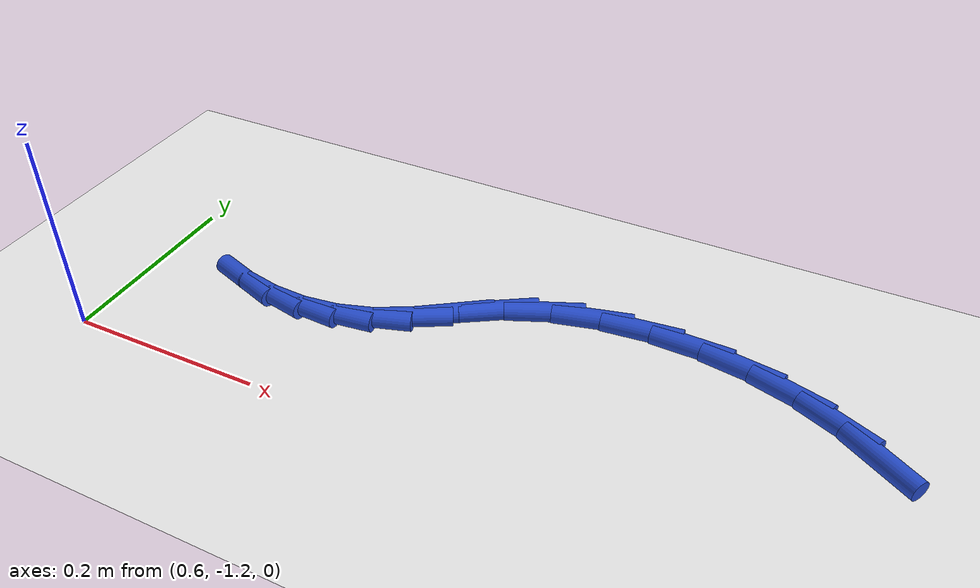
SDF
<sdf version="1.6">
 <world name="default">
  <model name="ground_plane">
   <static>1</static>
   <link name="link">
    <collision name="collision">
     <geometry><plane><normal>0 0 1</normal><size>100 100</size></plane></geometry>
     <surface><friction><ode><mu>100</mu><mu2>50</mu2></ode></friction></surface>
    </collision>
    <visual name="visual">
     <cast_shadows>0</cast_shadows>
     <geometry><plane><normal>0 0 1</normal><size>100 100</size></plane></geometry>
     <material>
      <script><uri>file://media/materials/scripts/gazebo.material</uri><name>Gazebo/WhiteGlow</name></script>
     </material>
    </visual>
   </link>
  </model>
  <model name="line">
   <link name="link_145">
    <pose>1.3328119799850466 -1.047060725077683 0.01 0 1.57 -0.5661128673239467</pose>
    <collision name="collision">
     <geometry><cylinder><radius>0.01</radius><length>0.08</length></cylinder></geometry>
    </collision>
    <visual name="visual">
     <material>
      <script><name>Gazebo/Blue</name><uri>file://media/materials/scripts/gazebo.material</uri></script>
     </material>
     <geometry><cylinder><radius>0.01</radius><length>0.08</length></cylinder></geometry>
    </visual>
   </link>
   <link name="link_146">
    <pose>1.2925771226439269 -1.0214915525321147 0.01 0 1.57 -0.41371269710014846</pose>
    <collision name="collision">
     <geometry><cylinder><radius>0.01</radius><length>0.08</length></cylinder></geometry>
    </collision>
    <visual name="visual">
     <material>
      <script><name>Gazebo/Blue</name><uri>file://media/materials/scripts/gazebo.material</uri></script>
     </material>
     <geometry><cylinder><radius>0.01</radius><length>0.08</length></cylinder></geometry>
    </visual>
   </link>
   <link name="link_147">
    <pose>1.24765729956267 -1.0017693963700596 0.01 0 1.57 -0.2784631607665193</pose>
    <collision name="collision">
     <geometry><cylinder><radius>0.01</radius><length>0.08</length></cylinder></geometry>
    </collision>
    <visual name="visual">
     <material>
      <script><name>Gazebo/Blue</name><uri>file://media/materials/scripts/gazebo.material</uri></script>
     </material>
     <geometry><cylinder><radius>0.01</radius><length>0.08</length></cylinder></geometry>
    </visual>
   </link>
   <link name="link_148">
    <pose>1.199543729355871 -0.9880141527984069 0.01 0 1.57 -0.15273599400276053</pose>
    <collision name="collision">
     <geometry><cylinder><radius>0.01</radius><length>0.08</length></cylinder></geometry>
    </collision>
    <visual name="visual">
     <material>
      <script><name>Gazebo/Blue</name><uri>file://media/materials/scripts/gazebo.material</uri></script>
     </material>
     <geometry><cylinder><radius>0.01</radius><length>0.08</length></cylinder></geometry>
    </visual>
   </link>
   <link name="link_149">
    <pose>1.1497276306381239 -0.9803457180240442 0.01 0 1.57 -0.029210267965083414</pose>
    <collision name="collision">
     <geometry><cylinder><radius>0.01</radius><length>0.08</length></cylinder></geometry>
    </collision>
    <visual name="visual">
     <material>
      <script><name>Gazebo/Blue</name><uri>file://media/materials/scripts/gazebo.material</uri></script>
     </material>
     <geometry><cylinder><radius>0.01</radius><length>0.08</length></cylinder></geometry>
    </visual>
   </link>
   <link name="link_150">
    <pose>1.0997002220240235 -0.9788839882538608 0.01 0 1.57 0.09946800758784262</pose>
    <collision name="collision">
     <geometry><cylinder><radius>0.01</radius><length>0.08</length></cylinder></geometry>
    </collision>
    <visual name="visual">
     <material>
      <script><name>Gazebo/Blue</name><uri>file://media/materials/scripts/gazebo.material</uri></script>
     </material>
     <geometry><cylinder><radius>0.01</radius><length>0.08</length></cylinder></geometry>
    </visual>
   </link>
   <link name="link_151">
    <pose>1.0509527221281636 -0.9837488596947446 0.01 0 1.57 0.2412346539472673</pose>
    <collision name="collision">
     <geometry><cylinder><radius>0.01</radius><length>0.08</length></cylinder></geometry>
    </collision>
    <visual name="visual">
     <material>
      <script><name>Gazebo/Blue</name><uri>file://media/materials/scripts/gazebo.material</uri></script>
     </material>
     <geometry><cylinder><radius>0.01</radius><length>0.08</length></cylinder></geometry>
    </visual>
   </link>
   <link name="link_152">
    <pose>1.0049763495651396 -0.9950602285535833 0.01 0 1.57 0.4048800213132827</pose>
    <collision name="collision">
     <geometry><cylinder><radius>0.01</radius><length>0.08</length></cylinder></geometry>
    </collision>
    <visual name="visual">
     <material>
      <script><name>Gazebo/Blue</name><uri>file://media/materials/scripts/gazebo.material</uri></script>
     </material>
     <geometry><cylinder><radius>0.01</radius><length>0.08</length></cylinder></geometry>
    </visual>
   </link>
   <link name="link_153">
    <pose>0.963261830243441 -1.0129372987827847 0.01 0 1.57 0.5629411455288814</pose>
    <collision name="collision">
     <geometry><cylinder><radius>0.01</radius><length>0.08</length></cylinder></geometry>
    </collision>
    <visual name="visual">
     <material>
      <script><name>Gazebo/Blue</name><uri>file://media/materials/scripts/gazebo.material</uri></script>
     </material>
     <geometry><cylinder><radius>0.01</radius><length>0.08</length></cylinder></geometry>
    </visual>
   </link>
   <link name="link_154">
    <pose>0.9263824129843471 -1.0362102145449439 0.01 0 1.57 0.6015086695489377</pose>
    <collision name="collision">
     <geometry><cylinder><radius>0.01</radius><length>0.08</length></cylinder></geometry>
    </collision>
    <visual name="visual">
     <material>
      <script><name>Gazebo/Blue</name><uri>file://media/materials/scripts/gazebo.material</uri></script>
     </material>
     <geometry><cylinder><radius>0.01</radius><length>0.08</length></cylinder></geometry>
    </visual>
   </link>
   <link name="link_155">
    <pose>0.8920908756862636 -1.0597463445767903 0.01 0 1.57 0.48862296652527926</pose>
    <collision name="collision">
     <geometry><cylinder><radius>0.01</radius><length>0.08</length></cylinder></geometry>
    </collision>
    <visual name="visual">
     <material>
      <script><name>Gazebo/Blue</name><uri>file://media/materials/scripts/gazebo.material</uri></script>
     </material>
     <geometry><cylinder><radius>0.01</radius><length>0.08</length></cylinder></geometry>
    </visual>
   </link>
   <link name="link_156">
    <pose>0.8577589113009045 -1.0779979254636674 0.01 0 1.57 0.3055885830083661</pose>
    <collision name="collision">
     <geometry><cylinder><radius>0.01</radius><length>0.08</length></cylinder></geometry>
    </collision>
    <visual name="visual">
     <material>
      <script><name>Gazebo/Blue</name><uri>file://media/materials/scripts/gazebo.material</uri></script>
     </material>
     <geometry><cylinder><radius>0.01</radius><length>0.08</length></cylinder></geometry>
    </visual>
   </link>
   <link name="link_157">
    <pose>0.822475727927549 -1.0891287207117797 0.01 0 1.57 0.12236577484828662</pose>
    <collision name="collision">
     <geometry><cylinder><radius>0.01</radius><length>0.08</length></cylinder></geometry>
    </collision>
    <visual name="visual">
     <material>
      <script><name>Gazebo/Blue</name><uri>file://media/materials/scripts/gazebo.material</uri></script>
     </material>
     <geometry><cylinder><radius>0.01</radius><length>0.08</length></cylinder></geometry>
    </visual>
   </link>
   <link name="link_158">
    <pose>0.7863788634506802 -1.0935679202634523 0.01 0 1.57 -0.04868140492020974</pose>
    <collision name="collision">
     <geometry><cylinder><radius>0.01</radius><length>0.08</length></cylinder></geometry>
    </collision>
    <visual name="visual">
     <material>
      <script><name>Gazebo/Blue</name><uri>file://media/materials/scripts/gazebo.material</uri></script>
     </material>
     <geometry><cylinder><radius>0.01</radius><length>0.08</length></cylinder></geometry>
    </visual>
   </link>
   <link name="link_159">
    <pose>0.7496208297302565 -1.0917770726187574 0.01 0 1.57 -0.20012923162895432</pose>
    <collision name="collision">
     <geometry><cylinder><radius>0.01</radius><length>0.08</length></cylinder></geometry>
    </collision>
    <visual name="visual">
     <material>
      <script><name>Gazebo/Blue</name><uri>file://media/materials/scripts/gazebo.material</uri></script>
     </material>
     <geometry><cylinder><radius>0.01</radius><length>0.08</length></cylinder></geometry>
    </visual>
   </link>
   <link name="link_160">
    <pose>0.7123541386262325 -1.084217726277765 0.01 0 1.57 -0.3295131891557666</pose>
    <collision name="collision">
     <geometry><cylinder><radius>0.01</radius><length>0.08</length></cylinder></geometry>
    </collision>
    <visual name="visual">
     <material>
      <script><name>Gazebo/Blue</name><uri>file://media/materials/scripts/gazebo.material</uri></script>
     </material>
     <geometry><cylinder><radius>0.01</radius><length>0.08</length></cylinder></geometry>
    </visual>
   </link>
  </model>
 </world>
</sdf>
